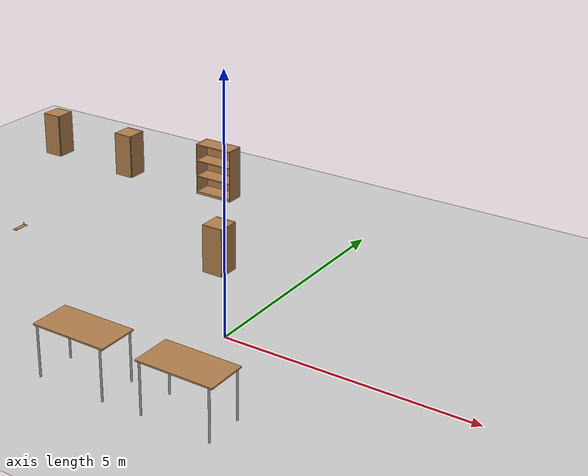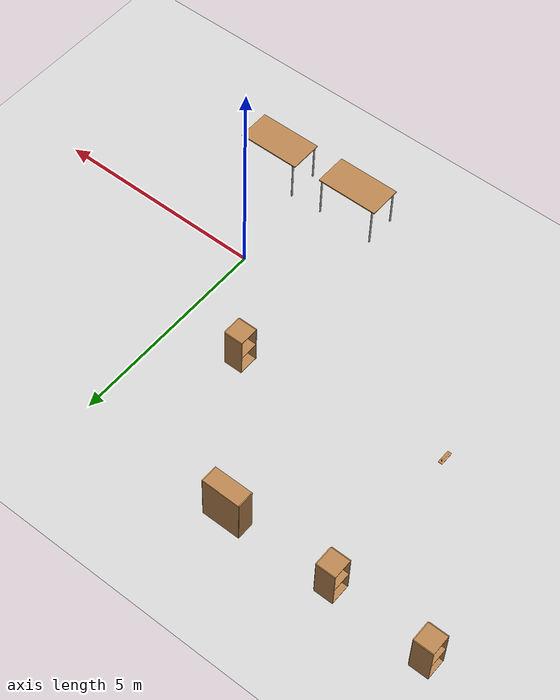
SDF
<sdf version="1.6">
 <world name="default">
  <model name="ground_plane">
   <static>1</static>
   <link name="link">
    <collision name="collision">
     <geometry><plane><normal>0 0 1</normal><size>100 100</size></plane></geometry>
     <surface>
      <contact><collide_bitmask>65535</collide_bitmask></contact>
      <friction><ode><mu>100</mu><mu2>50</mu2></ode></friction>
     </surface>
    </collision>
    <visual name="visual">
     <cast_shadows>0</cast_shadows>
     <geometry><plane><normal>0 0 1</normal><size>100 100</size></plane></geometry>
     <material>
      <script><uri>file://media/materials/scripts/gazebo.material</uri><name>Gazebo/Grey</name></script>
     </material>
    </visual>
   </link>
  </model>
  <model name="bookshelf">
   <static>1</static>
   <link name="link">
    <inertial><mass>1</mass></inertial>
    <collision name="back">
     <pose>0 0.005 0.6 0 -0 0</pose>
     <geometry><box><size>0.9 0.01 1.2</size></box></geometry>
    </collision>
    <visual name="visual1">
     <pose>0 0.005 0.6 0 -0 0</pose>
     <geometry><box><size>0.9 0.01 1.2</size></box></geometry>
     <material>
      <script><uri>file://media/materials/scripts/gazebo.material</uri><name>Gazebo/Wood</name></script>
     </material>
    </visual>
    <collision name="left_side">
     <pose>0.45 -0.195 0.6 0 -0 0</pose>
     <geometry><box><size>0.02 0.4 1.2</size></box></geometry>
    </collision>
    <visual name="visual2">
     <pose>0.45 -0.195 0.6 0 -0 0</pose>
     <geometry><box><size>0.02 0.4 1.2</size></box></geometry>
     <material>
      <script><uri>file://media/materials/scripts/gazebo.material</uri><name>Gazebo/Wood</name></script>
     </material>
    </visual>
    <collision name="right_side">
     <pose>-0.45 -0.195 0.6 0 -0 0</pose>
     <geometry><box><size>0.02 0.4 1.2</size></box></geometry>
    </collision>
    <visual name="visual3">
     <pose>-0.45 -0.195 0.6 0 -0 0</pose>
     <geometry><box><size>0.02 0.4 1.2</size></box></geometry>
     <material>
      <script><uri>file://media/materials/scripts/gazebo.material</uri><name>Gazebo/Wood</name></script>
     </material>
    </visual>
    <collision name="bottom">
     <pose>0 -0.195 0.03 0 -0 0</pose>
     <geometry><box><size>0.88 0.4 0.06</size></box></geometry>
    </collision>
    <visual name="visual4">
     <pose>0 -0.195 0.03 0 -0 0</pose>
     <geometry><box><size>0.88 0.4 0.06</size></box></geometry>
     <material>
      <script><uri>file://media/materials/scripts/gazebo.material</uri><name>Gazebo/Wood</name></script>
     </material>
    </visual>
    <collision name="top">
     <pose>0 -0.195 1.19 0 -0 0</pose>
     <geometry><box><size>0.88 0.4 0.02</size></box></geometry>
    </collision>
    <visual name="visual5">
     <pose>0 -0.195 1.19 0 -0 0</pose>
     <geometry><box><size>0.88 0.4 0.02</size></box></geometry>
     <material>
      <script><uri>file://media/materials/scripts/gazebo.material</uri><name>Gazebo/Wood</name></script>
     </material>
    </visual>
    <collision name="low_shelf">
     <pose>0 -0.195 0.43 0 -0 0</pose>
     <geometry><box><size>0.88 0.4 0.02</size></box></geometry>
    </collision>
    <visual name="visual6">
     <pose>0 -0.195 0.43 0 -0 0</pose>
     <geometry><box><size>0.88 0.4 0.02</size></box></geometry>
     <material>
      <script><uri>file://media/materials/scripts/gazebo.material</uri><name>Gazebo/Wood</name></script>
     </material>
    </visual>
    <collision name="high_shelf">
     <pose>0 -0.195 0.8 0 -0 0</pose>
     <geometry><box><size>0.88 0.4 0.02</size></box></geometry>
    </collision>
    <visual name="visual7">
     <pose>0 -0.195 0.8 0 -0 0</pose>
     <geometry><box><size>0.88 0.4 0.02</size></box></geometry>
     <material>
      <script><uri>file://media/materials/scripts/gazebo.material</uri><name>Gazebo/Wood</name></script>
     </material>
    </visual>
   </link>
   <pose>-3.85544 5.41529 0 0 -0 0</pose>
  </model>
  <model name="cabinet">
   <static>1</static>
   <link name="cabinet_bottom_plate">
    <inertial>
     <pose>0 0 -1 0 -0 0</pose>
     <inertia><ixx>2.05</ixx><ixy>0</ixy><ixz>0</ixz><iyy>2.05</iyy><iyz>0</iyz><izz>2.05</izz></inertia>
     <mass>25</mass>
    </inertial>
    <collision name="cabinet_bottom_plate_geom">
     <pose>0 0 0.01 0 -0 0</pose>
     <geometry><box><size>0.45 0.45 0.02</size></box></geometry>
    </collision>
    <visual name="cabinet_bottom_plate_geom_visual">
     <pose>0 0 0.01 0 -0 0</pose>
     <geometry><box><size>0.45 0.45 0.02</size></box></geometry>
     <material>
      <script><uri>file://media/materials/scripts/gazebo.material</uri><name>Gazebo/Wood</name></script>
     </material>
    </visual>
    <collision name="cabinet_bottom_plate_geom_cabinet_back_plate">
     <pose>0.235 0 0.51 0 -0 0</pose>
     <geometry><box><size>0.02 0.45 1.02</size></box></geometry>
    </collision>
    <visual name="cabinet_bottom_plate_geom_cabinet_back_plate_visual">
     <pose>0.235 0 0.51 0 -0 0</pose>
     <geometry><box><size>0.02 0.45 1.02</size></box></geometry>
     <material>
      <script><uri>file://media/materials/scripts/gazebo.material</uri><name>Gazebo/Wood</name></script>
     </material>
    </visual>
    <collision name="cabinet_bottom_plate_geom_cabinet_left_plate">
     <pose>0 0.235 0.51 0 -0 0</pose>
     <geometry><box><size>0.45 0.02 1.02</size></box></geometry>
    </collision>
    <visual name="cabinet_bottom_plate_geom_cabinet_left_plate_visual">
     <pose>0 0.235 0.51 0 -0 0</pose>
     <geometry><box><size>0.45 0.02 1.02</size></box></geometry>
     <material>
      <script><uri>file://media/materials/scripts/gazebo.material</uri><name>Gazebo/Wood</name></script>
     </material>
    </visual>
    <collision name="cabinet_bottom_plate_geom_cabinet_middle_plate">
     <pose>0 0 0.51 0 -0 0</pose>
     <geometry><box><size>0.45 0.45 0.02</size></box></geometry>
    </collision>
    <visual name="cabinet_bottom_plate_geom_cabinet_middle_plate_visual">
     <pose>0 0 0.51 0 -0 0</pose>
     <geometry><box><size>0.45 0.45 0.02</size></box></geometry>
     <material>
      <script><uri>file://media/materials/scripts/gazebo.material</uri><name>Gazebo/Wood</name></script>
     </material>
    </visual>
    <collision name="cabinet_bottom_plate_geom_cabinet_right_plate">
     <pose>0 -0.235 0.51 0 -0 0</pose>
     <geometry><box><size>0.45 0.02 1.02</size></box></geometry>
    </collision>
    <visual name="cabinet_bottom_plate_geom_cabinet_right_plate_visual">
     <pose>0 -0.235 0.51 0 -0 0</pose>
     <geometry><box><size>0.45 0.02 1.02</size></box></geometry>
     <material>
      <script><uri>file://media/materials/scripts/gazebo.material</uri><name>Gazebo/Wood</name></script>
     </material>
    </visual>
    <collision name="cabinet_bottom_plate_geom_cabinet_top_plate">
     <pose>0 0 1.01 0 -0 0</pose>
     <geometry><box><size>0.45 0.45 0.02</size></box></geometry>
    </collision>
    <visual name="cabinet_bottom_plate_geom_cabinet_top_plate_visual">
     <pose>0 0 1.01 0 -0 0</pose>
     <geometry><box><size>0.45 0.45 0.02</size></box></geometry>
     <material>
      <script><uri>file://media/materials/scripts/gazebo.material</uri><name>Gazebo/Wood</name></script>
     </material>
    </visual>
   </link>
   <pose>-8.64182 5.23391 0 0 -0 0</pose>
  </model>
  <model name="cabinet_0">
   <static>1</static>
   <link name="cabinet_bottom_plate">
    <inertial>
     <pose>0 0 -1 0 -0 0</pose>
     <inertia><ixx>2.05</ixx><ixy>0</ixy><ixz>0</ixz><iyy>2.05</iyy><iyz>0</iyz><izz>2.05</izz></inertia>
     <mass>25</mass>
    </inertial>
    <collision name="cabinet_bottom_plate_geom">
     <pose>0 0 0.01 0 -0 0</pose>
     <geometry><box><size>0.45 0.45 0.02</size></box></geometry>
    </collision>
    <visual name="cabinet_bottom_plate_geom_visual">
     <pose>0 0 0.01 0 -0 0</pose>
     <geometry><box><size>0.45 0.45 0.02</size></box></geometry>
     <material>
      <script><uri>file://media/materials/scripts/gazebo.material</uri><name>Gazebo/Wood</name></script>
     </material>
    </visual>
    <collision name="cabinet_bottom_plate_geom_cabinet_back_plate">
     <pose>0.235 0 0.51 0 -0 0</pose>
     <geometry><box><size>0.02 0.45 1.02</size></box></geometry>
    </collision>
    <visual name="cabinet_bottom_plate_geom_cabinet_back_plate_visual">
     <pose>0.235 0 0.51 0 -0 0</pose>
     <geometry><box><size>0.02 0.45 1.02</size></box></geometry>
     <material>
      <script><uri>file://media/materials/scripts/gazebo.material</uri><name>Gazebo/Wood</name></script>
     </material>
    </visual>
    <collision name="cabinet_bottom_plate_geom_cabinet_left_plate">
     <pose>0 0.235 0.51 0 -0 0</pose>
     <geometry><box><size>0.45 0.02 1.02</size></box></geometry>
    </collision>
    <visual name="cabinet_bottom_plate_geom_cabinet_left_plate_visual">
     <pose>0 0.235 0.51 0 -0 0</pose>
     <geometry><box><size>0.45 0.02 1.02</size></box></geometry>
     <material>
      <script><uri>file://media/materials/scripts/gazebo.material</uri><name>Gazebo/Wood</name></script>
     </material>
    </visual>
    <collision name="cabinet_bottom_plate_geom_cabinet_middle_plate">
     <pose>0 0 0.51 0 -0 0</pose>
     <geometry><box><size>0.45 0.45 0.02</size></box></geometry>
    </collision>
    <visual name="cabinet_bottom_plate_geom_cabinet_middle_plate_visual">
     <pose>0 0 0.51 0 -0 0</pose>
     <geometry><box><size>0.45 0.45 0.02</size></box></geometry>
     <material>
      <script><uri>file://media/materials/scripts/gazebo.material</uri><name>Gazebo/Wood</name></script>
     </material>
    </visual>
    <collision name="cabinet_bottom_plate_geom_cabinet_right_plate">
     <pose>0 -0.235 0.51 0 -0 0</pose>
     <geometry><box><size>0.45 0.02 1.02</size></box></geometry>
    </collision>
    <visual name="cabinet_bottom_plate_geom_cabinet_right_plate_visual">
     <pose>0 -0.235 0.51 0 -0 0</pose>
     <geometry><box><size>0.45 0.02 1.02</size></box></geometry>
     <material>
      <script><uri>file://media/materials/scripts/gazebo.material</uri><name>Gazebo/Wood</name></script>
     </material>
    </visual>
    <collision name="cabinet_bottom_plate_geom_cabinet_top_plate">
     <pose>0 0 1.01 0 -0 0</pose>
     <geometry><box><size>0.45 0.45 0.02</size></box></geometry>
    </collision>
    <visual name="cabinet_bottom_plate_geom_cabinet_top_plate_visual">
     <pose>0 0 1.01 0 -0 0</pose>
     <geometry><box><size>0.45 0.45 0.02</size></box></geometry>
     <material>
      <script><uri>file://media/materials/scripts/gazebo.material</uri><name>Gazebo/Wood</name></script>
     </material>
    </visual>
   </link>
   <pose>-6.34815 5.1378 0 0 -0 0</pose>
  </model>
  <model name="table">
   <static>1</static>
   <link name="link">
    <collision name="surface">
     <pose>0 0 1 0 -0 0</pose>
     <geometry><box><size>1.5 0.8 0.03</size></box></geometry>
     <surface><friction><ode><mu>0.6</mu><mu2>0.6</mu2></ode></friction></surface>
    </collision>
    <visual name="visual1">
     <pose>0 0 1 0 -0 0</pose>
     <geometry><box><size>1.5 0.8 0.03</size></box></geometry>
     <material>
      <script><uri>file://media/materials/scripts/gazebo.material</uri><name>Gazebo/Wood</name></script>
     </material>
    </visual>
    <collision name="front_left_leg">
     <pose>0.68 0.38 0.5 0 -0 0</pose>
     <geometry><cylinder><radius>0.02</radius><length>1</length></cylinder></geometry>
    </collision>
    <visual name="front_left_leg">
     <pose>0.68 0.38 0.5 0 -0 0</pose>
     <geometry><cylinder><radius>0.02</radius><length>1</length></cylinder></geometry>
     <material>
      <script><uri>file://media/materials/scripts/gazebo.material</uri><name>Gazebo/Grey</name></script>
     </material>
    </visual>
    <collision name="front_right_leg">
     <pose>0.68 -0.38 0.5 0 -0 0</pose>
     <geometry><cylinder><radius>0.02</radius><length>1</length></cylinder></geometry>
    </collision>
    <visual name="front_right_leg">
     <pose>0.68 -0.38 0.5 0 -0 0</pose>
     <geometry><cylinder><radius>0.02</radius><length>1</length></cylinder></geometry>
     <material>
      <script><uri>file://media/materials/scripts/gazebo.material</uri><name>Gazebo/Grey</name></script>
     </material>
    </visual>
    <collision name="back_right_leg">
     <pose>-0.68 -0.38 0.5 0 -0 0</pose>
     <geometry><cylinder><radius>0.02</radius><length>1</length></cylinder></geometry>
    </collision>
    <visual name="back_right_leg">
     <pose>-0.68 -0.38 0.5 0 -0 0</pose>
     <geometry><cylinder><radius>0.02</radius><length>1</length></cylinder></geometry>
     <material>
      <script><uri>file://media/materials/scripts/gazebo.material</uri><name>Gazebo/Grey</name></script>
     </material>
    </visual>
    <collision name="back_left_leg">
     <pose>-0.68 0.38 0.5 0 -0 0</pose>
     <geometry><cylinder><radius>0.02</radius><length>1</length></cylinder></geometry>
    </collision>
    <visual name="back_left_leg">
     <pose>-0.68 0.38 0.5 0 -0 0</pose>
     <geometry><cylinder><radius>0.02</radius><length>1</length></cylinder></geometry>
     <material>
      <script><uri>file://media/materials/scripts/gazebo.material</uri><name>Gazebo/Grey</name></script>
     </material>
    </visual>
   </link>
   <pose>-1.11368 -2.49478 0 0 -0 0</pose>
  </model>
  <model name="table_0">
   <static>1</static>
   <link name="link">
    <collision name="surface">
     <pose>0 0 1 0 -0 0</pose>
     <geometry><box><size>1.5 0.8 0.03</size></box></geometry>
     <surface><friction><ode><mu>0.6</mu><mu2>0.6</mu2></ode></friction></surface>
    </collision>
    <visual name="visual1">
     <pose>0 0 1 0 -0 0</pose>
     <geometry><box><size>1.5 0.8 0.03</size></box></geometry>
     <material>
      <script><uri>file://media/materials/scripts/gazebo.material</uri><name>Gazebo/Wood</name></script>
     </material>
    </visual>
    <collision name="front_left_leg">
     <pose>0.68 0.38 0.5 0 -0 0</pose>
     <geometry><cylinder><radius>0.02</radius><length>1</length></cylinder></geometry>
    </collision>
    <visual name="front_left_leg">
     <pose>0.68 0.38 0.5 0 -0 0</pose>
     <geometry><cylinder><radius>0.02</radius><length>1</length></cylinder></geometry>
     <material>
      <script><uri>file://media/materials/scripts/gazebo.material</uri><name>Gazebo/Grey</name></script>
     </material>
    </visual>
    <collision name="front_right_leg">
     <pose>0.68 -0.38 0.5 0 -0 0</pose>
     <geometry><cylinder><radius>0.02</radius><length>1</length></cylinder></geometry>
    </collision>
    <visual name="front_right_leg">
     <pose>0.68 -0.38 0.5 0 -0 0</pose>
     <geometry><cylinder><radius>0.02</radius><length>1</length></cylinder></geometry>
     <material>
      <script><uri>file://media/materials/scripts/gazebo.material</uri><name>Gazebo/Grey</name></script>
     </material>
    </visual>
    <collision name="back_right_leg">
     <pose>-0.68 -0.38 0.5 0 -0 0</pose>
     <geometry><cylinder><radius>0.02</radius><length>1</length></cylinder></geometry>
    </collision>
    <visual name="back_right_leg">
     <pose>-0.68 -0.38 0.5 0 -0 0</pose>
     <geometry><cylinder><radius>0.02</radius><length>1</length></cylinder></geometry>
     <material>
      <script><uri>file://media/materials/scripts/gazebo.material</uri><name>Gazebo/Grey</name></script>
     </material>
    </visual>
    <collision name="back_left_leg">
     <pose>-0.68 0.38 0.5 0 -0 0</pose>
     <geometry><cylinder><radius>0.02</radius><length>1</length></cylinder></geometry>
    </collision>
    <visual name="back_left_leg">
     <pose>-0.68 0.38 0.5 0 -0 0</pose>
     <geometry><cylinder><radius>0.02</radius><length>1</length></cylinder></geometry>
     <material>
      <script><uri>file://media/materials/scripts/gazebo.material</uri><name>Gazebo/Grey</name></script>
     </material>
    </visual>
   </link>
   <pose>1.01566 -2.44933 0 0 -0 0</pose>
  </model>
  <model name="wooden_peg_board">
   <link name="wooden_board::base">
    <pose>0 0 0.00523 0 -0 0</pose>
    <inertial>
     <mass>0.2765</mass>
     <inertia>
      <ixx>0.0025148</ixx>
      <ixy>0</ixy>
      <ixz>0</ixz>
      <iyy>0.00024037</iyy>
      <iyz>0</iyz>
      <izz>0.00275013</izz>
     </inertia>
    </inertial>
    <collision name="collision">
     <geometry><box><size>0.1016 0.3302 0.01046</size></box></geometry>
     <surface>
      <contact>
       <poissons_ratio>0.347</poissons_ratio>
       <elastic_modulus>8.8e+09</elastic_modulus>
       <ode><kp>100000</kp><kd>100</kd><max_vel>100</max_vel><min_depth>0.001</min_depth></ode>
      </contact>
      <friction>
       <torsional>
        <coefficient>1</coefficient>
        <use_patch_radius>0</use_patch_radius>
        <surface_radius>0.01</surface_radius>
       </torsional>
      </friction>
     </surface>
    </collision>
    <visual name="visual">
     <geometry><box><size>0.1016 0.3302 0.01046</size></box></geometry>
     <material>
      <script><uri>file://media/materials/scripts/gazebo.material</uri><name>Gazebo/Wood</name></script>
     </material>
    </visual>
    <visual name="tee_nut_1">
     <pose>0 -0.116 0 0 -0 0</pose>
     <geometry><cylinder><radius>0.00635</radius><length>0.0105646</length></cylinder></geometry>
     <material>
      <script><uri>file://media/materials/scripts/gazebo.material</uri><name>Gazebo/Grey</name></script>
     </material>
    </visual>
    <visual name="tee_nut_2">
     <pose>0 -0.038 0 0 -0 0</pose>
     <geometry><cylinder><radius>0.00635</radius><length>0.0105646</length></cylinder></geometry>
     <material>
      <script><uri>file://media/materials/scripts/gazebo.material</uri><name>Gazebo/Grey</name></script>
     </material>
    </visual>
    <visual name="tee_nut_3">
     <pose>0 0.038 0 0 -0 0</pose>
     <geometry><cylinder><radius>0.00635</radius><length>0.0105646</length></cylinder></geometry>
     <material>
      <script><uri>file://media/materials/scripts/gazebo.material</uri><name>Gazebo/Grey</name></script>
     </material>
    </visual>
    <visual name="tee_nut_4">
     <pose>0 0.116 0 0 -0 0</pose>
     <geometry><cylinder><radius>0.00635</radius><length>0.0105646</length></cylinder></geometry>
     <material>
      <script><uri>file://media/materials/scripts/gazebo.material</uri><name>Gazebo/Grey</name></script>
     </material>
    </visual>
   </link>
   <link name="peg::link">
    <pose>0 0.116 0.04 0 -0 0</pose>
    <inertial>
     <mass>0.0175</mass>
     <inertia>
      <ixx>9.74923e-06</ixx>
      <ixy>0</ixy>
      <ixz>0</ixz>
      <iyy>9.74923e-06</iyy>
      <iyz>0</iyz>
      <izz>8.31797e-07</izz>
     </inertia>
    </inertial>
    <collision name="collision">
     <geometry><cylinder><radius>0.00975</radius><length>0.08</length></cylinder></geometry>
     <surface>
      <contact>
       <poissons_ratio>0.347</poissons_ratio>
       <elastic_modulus>8.8e+09</elastic_modulus>
       <ode><kp>100000</kp><kd>100</kd><max_vel>100</max_vel><min_depth>0.001</min_depth></ode>
      </contact>
      <friction>
       <torsional>
        <coefficient>1</coefficient>
        <use_patch_radius>0</use_patch_radius>
        <surface_radius>0.01</surface_radius>
       </torsional>
      </friction>
     </surface>
    </collision>
    <visual name="visual">
     <geometry><cylinder><radius>0.00975</radius><length>0.08</length></cylinder></geometry>
     <material>
      <script><uri>file://media/materials/scripts/gazebo.material</uri><name>Gazebo/Wood</name></script>
     </material>
    </visual>
   </link>
   <joint name="board_peg" type="revolute">
    <parent>wooden_board::base</parent>
    <child>peg::link</child>
    <axis>
     <xyz>0 0 1</xyz>
     <limit><upper>0</upper><lower>0</lower></limit>
     <use_parent_model_frame>0</use_parent_model_frame>
     <dynamics><spring_reference>0</spring_reference><spring_stiffness>0</spring_stiffness></dynamics>
    </axis>
   </joint>
   <pose>-6.31731 1.37722 -0.001004 1.3e-05 -1e-06 -1e-06</pose>
  </model>
  <model name="cabinet_1">
   <static>1</static>
   <link name="cabinet_bottom_plate">
    <inertial>
     <pose>0 0 -1 0 -0 0</pose>
     <inertia><ixx>2.05</ixx><ixy>0</ixy><ixz>0</ixz><iyy>2.05</iyy><iyz>0</iyz><izz>2.05</izz></inertia>
     <mass>25</mass>
    </inertial>
    <collision name="cabinet_bottom_plate_geom">
     <pose>0 0 0.01 0 -0 0</pose>
     <geometry><box><size>0.45 0.45 0.02</size></box></geometry>
    </collision>
    <visual name="cabinet_bottom_plate_geom_visual">
     <pose>0 0 0.01 0 -0 0</pose>
     <geometry><box><size>0.45 0.45 0.02</size></box></geometry>
     <material>
      <script><uri>file://media/materials/scripts/gazebo.material</uri><name>Gazebo/Wood</name></script>
     </material>
    </visual>
    <collision name="cabinet_bottom_plate_geom_cabinet_back_plate">
     <pose>0.235 0 0.51 0 -0 0</pose>
     <geometry><box><size>0.02 0.45 1.02</size></box></geometry>
    </collision>
    <visual name="cabinet_bottom_plate_geom_cabinet_back_plate_visual">
     <pose>0.235 0 0.51 0 -0 0</pose>
     <geometry><box><size>0.02 0.45 1.02</size></box></geometry>
     <material>
      <script><uri>file://media/materials/scripts/gazebo.material</uri><name>Gazebo/Wood</name></script>
     </material>
    </visual>
    <collision name="cabinet_bottom_plate_geom_cabinet_left_plate">
     <pose>0 0.235 0.51 0 -0 0</pose>
     <geometry><box><size>0.45 0.02 1.02</size></box></geometry>
    </collision>
    <visual name="cabinet_bottom_plate_geom_cabinet_left_plate_visual">
     <pose>0 0.235 0.51 0 -0 0</pose>
     <geometry><box><size>0.45 0.02 1.02</size></box></geometry>
     <material>
      <script><uri>file://media/materials/scripts/gazebo.material</uri><name>Gazebo/Wood</name></script>
     </material>
    </visual>
    <collision name="cabinet_bottom_plate_geom_cabinet_middle_plate">
     <pose>0 0 0.51 0 -0 0</pose>
     <geometry><box><size>0.45 0.45 0.02</size></box></geometry>
    </collision>
    <visual name="cabinet_bottom_plate_geom_cabinet_middle_plate_visual">
     <pose>0 0 0.51 0 -0 0</pose>
     <geometry><box><size>0.45 0.45 0.02</size></box></geometry>
     <material>
      <script><uri>file://media/materials/scripts/gazebo.material</uri><name>Gazebo/Wood</name></script>
     </material>
    </visual>
    <collision name="cabinet_bottom_plate_geom_cabinet_right_plate">
     <pose>0 -0.235 0.51 0 -0 0</pose>
     <geometry><box><size>0.45 0.02 1.02</size></box></geometry>
    </collision>
    <visual name="cabinet_bottom_plate_geom_cabinet_right_plate_visual">
     <pose>0 -0.235 0.51 0 -0 0</pose>
     <geometry><box><size>0.45 0.02 1.02</size></box></geometry>
     <material>
      <script><uri>file://media/materials/scripts/gazebo.material</uri><name>Gazebo/Wood</name></script>
     </material>
    </visual>
    <collision name="cabinet_bottom_plate_geom_cabinet_top_plate">
     <pose>0 0 1.01 0 -0 0</pose>
     <geometry><box><size>0.45 0.45 0.02</size></box></geometry>
    </collision>
    <visual name="cabinet_bottom_plate_geom_cabinet_top_plate_visual">
     <pose>0 0 1.01 0 -0 0</pose>
     <geometry><box><size>0.45 0.45 0.02</size></box></geometry>
     <material>
      <script><uri>file://media/materials/scripts/gazebo.material</uri><name>Gazebo/Wood</name></script>
     </material>
    </visual>
   </link>
   <pose>-1.64784 2.13625 0 0 -0 0</pose>
  </model>
 </world>
</sdf>
